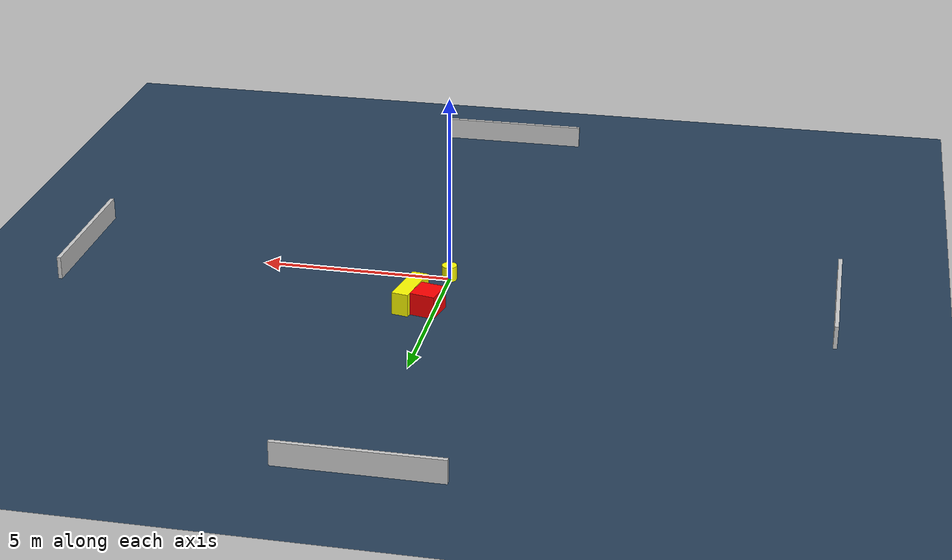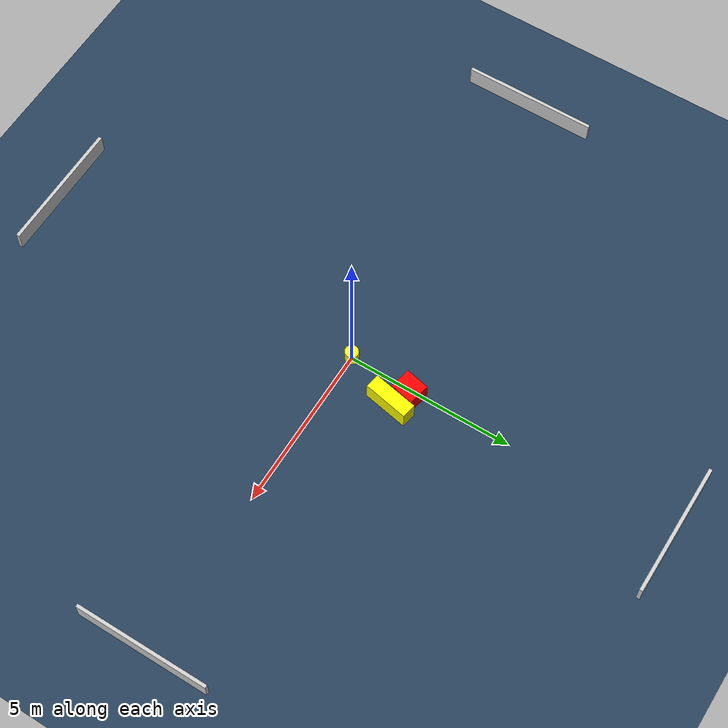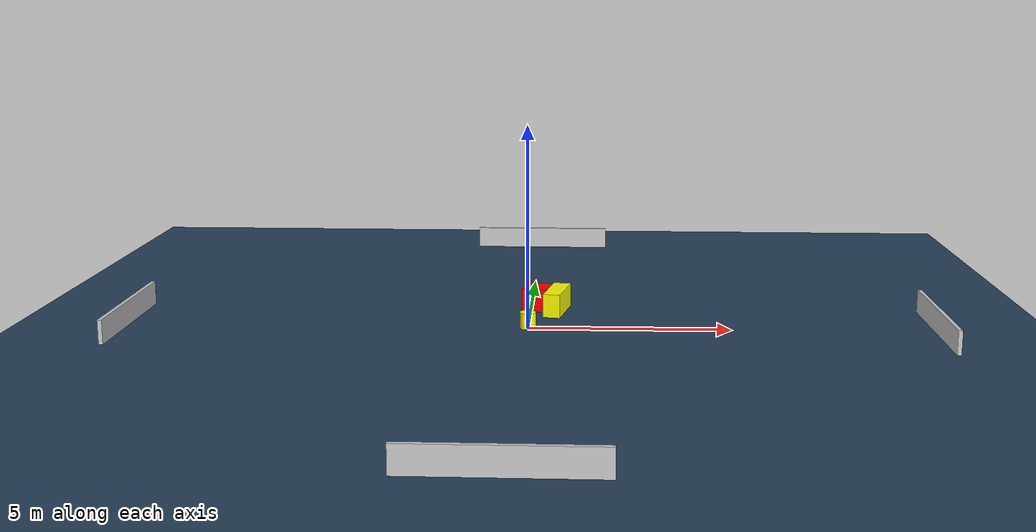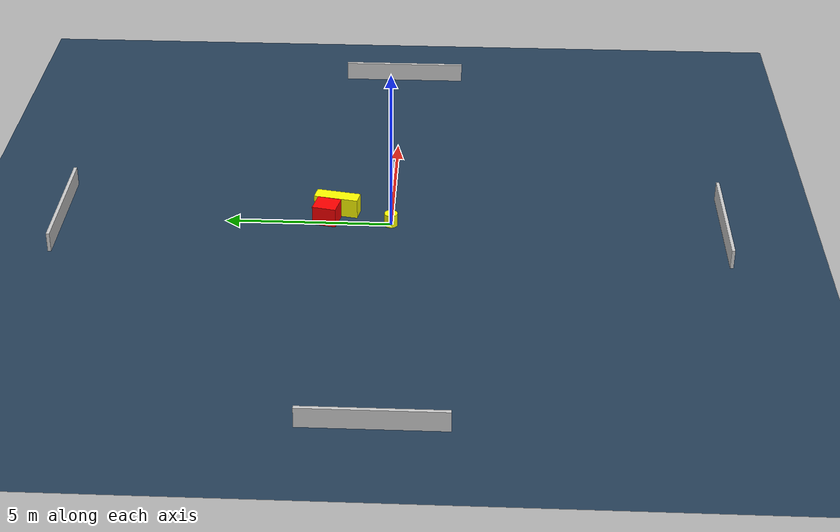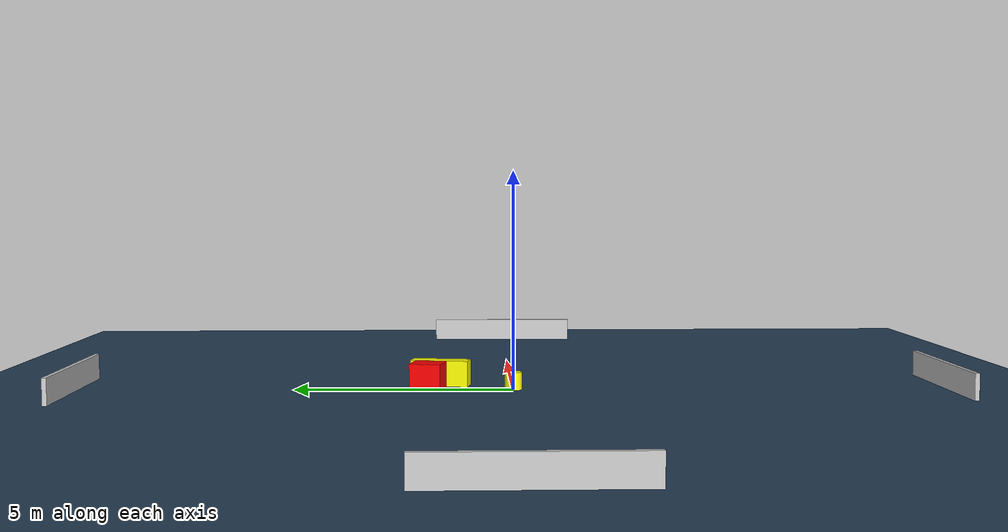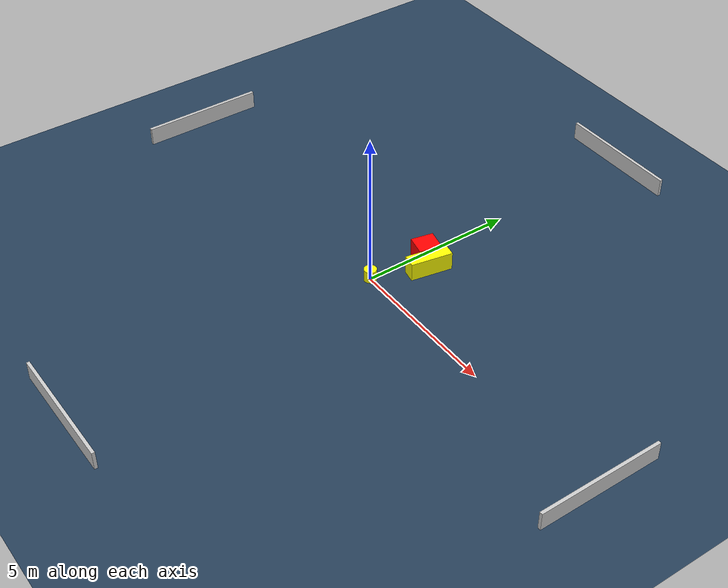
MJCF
<?xml version="1.0" ?>
<mujoco model="generated_environment">
  <option timestep="0.01" integrator="RK4" cone="elliptic"/>
  <default>
    <geom density="1"/>
  </default>
  <asset>
    <texture builtin="gradient" height="3072" name="skybox" rgb1="0.3 0.5 0.7" rgb2="0 0 0" type="skybox" width="512"/>
    <texture builtin="checker" height="300" name="groundplane" rgb1="0.2 0.3 0.4" rgb2="0.1 0.2 0.3" type="2d" width="300"/>
    <material name="groundplane" reflectance="0.2" texrepeat="5 5" texture="groundplane"/>
  </asset>
  <worldbody>
    <light dir="0 0 -1" directional="true" pos="0 0 1.5"/>
    <geom condim="3" friction="0.5 0.005 0.001" material="groundplane" name="floor" pos="0 0 0" size="0 0 0.05" type="plane"/>
    <body name="walls">
      <geom name="wall_1" condim="4" pos="-10.0 0.0 0.3" rgba="0.800000011920929 0.800000011920929 0.800000011920929 1.0" size="0.05 2.0 0.3" type="box"/>
      <geom name="wall_2" condim="4" pos="10.0 0.0 0.3" rgba="0.800000011920929 0.800000011920929 0.800000011920929 1.0" size="0.05 2.0 0.3" type="box"/>
      <geom name="wall_3" condim="4" pos="0.0 -10.0 0.3" rgba="0.800000011920929 0.800000011920929 0.800000011920929 1.0" size="2.0 0.05 0.3" type="box"/>
      <geom name="wall_4" condim="4" pos="0.0 10.0 0.3" rgba="0.800000011920929 0.800000011920929 0.800000011920929 1.0" size="2.0 0.05 0.3" type="box"/>
    </body>
    <body name="robot">
      <joint name="joint_x" type="slide" pos="0 0 0" axis="1 0 0"/>
      <joint name="joint_y" type="slide" pos="0 0 0" axis="0 1 0"/>
      <geom name="robot" type="cylinder" pos="0.0 0.0 0.2" size="0.2 0.2 0.0" mass="5.0" friction="1.0 0.005 0.0001" condim="4" rgba="1.0 1.0 0.0 1.0"/>
    </body>
    <body name="obstacle_1_movable">
      <geom name="obstacle_1_movable" condim="4" pos="0.6785256934438223 1.6707381738665315 0.3" euler="0 0 349.19616153392667" friction="0.0 0.005 0.001" rgba="1.0 1.0 0.0 1.0" size="0.21862551873555144 0.6751329762651359 0.3" type="box" mass="0.1"/>
      <joint type="free"/>
    </body>
    <body name="obstacle_2_static">
      <geom name="obstacle_2_static" condim="4" pos="0.16099807153791088 1.9572365366588693 0.3" euler="0 0 167.8457172572675" friction="0.0 0.005 0.001" rgba="1.0 0.0 0.0 1.0" size="0.32947760438742557 0.3625029498143444 0.3" type="box"/>
    </body>
  </worldbody>
  <actuator>
    <motor name="actuator_x" joint="joint_x" gear="1" ctrlrange="-1 1"/>
    <motor name="actuator_y" joint="joint_y" gear="1" ctrlrange="-1 1"/>
  </actuator>
</mujoco>
